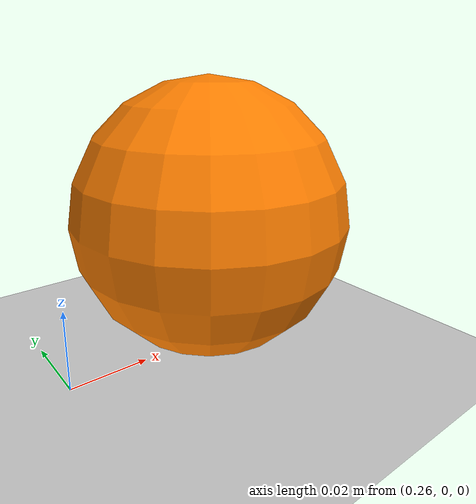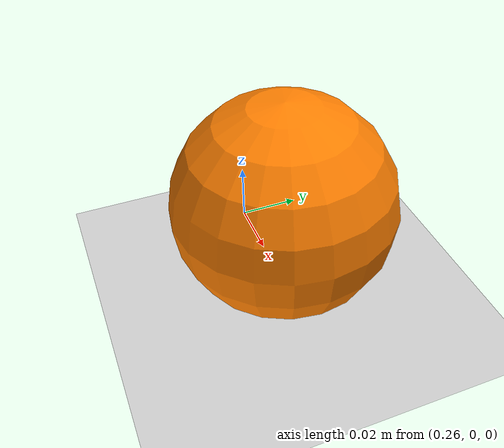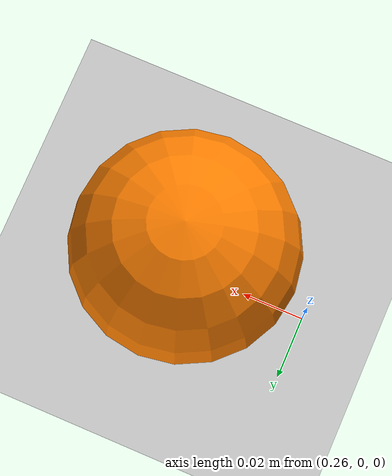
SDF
<?xml version="1.0" ?>
<sdf version="1.8">
  <world name="op3_world">

    <!-- Physics settings -->
    <physics name="default_physics" type="ode">
      <max_step_size>0.001</max_step_size>
      <real_time_factor>1.0</real_time_factor>
      <real_time_update_rate>1000</real_time_update_rate>
    </physics>

    <!-- Plugins -->
    <plugin filename="gz-sim-physics-system" name="gz::sim::systems::Physics"/>
    <plugin filename="gz-sim-user-commands-system" name="gz::sim::systems::UserCommands"/>
    <plugin filename="gz-sim-scene-broadcaster-system" name="gz::sim::systems::SceneBroadcaster"/>
    <plugin filename="gz-sim-sensors-system" name="gz::sim::systems::Sensors">
      <render_engine>ogre2</render_engine>
    </plugin>
    <plugin filename="gz-sim-imu-system" name="gz::sim::systems::Imu"/>
    <plugin filename="gz-sim-contact-system" name="gz::sim::systems::Contact"/>

    <!-- Gravity -->
    <gravity>0 0 -9.81</gravity>

    <!-- Lighting -->
    <light type="directional" name="sun">
      <cast_shadows>true</cast_shadows>
      <pose>0 0 10 0 0 0</pose>
      <diffuse>0.8 0.8 0.8 1</diffuse>
      <specular>0.2 0.2 0.2 1</specular>
      <attenuation>
        <range>1000</range>
        <constant>0.9</constant>
        <linear>0.01</linear>
        <quadratic>0.001</quadratic>
      </attenuation>
      <direction>-0.5 0.1 -0.9</direction>
    </light>

    <!-- Ground Plane -->
    <model name="ground_plane">
      <static>true</static>
      <link name="link">
        <collision name="collision">
          <geometry>
            <plane>
              <normal>0 0 1</normal>
              <size>100 100</size>
            </plane>
          </geometry>
          <surface>
            <friction>
              <ode>
                <mu>100</mu>
                <mu2>50</mu2>
              </ode>
            </friction>
          </surface>
        </collision>
        <visual name="visual">
          <geometry>
            <plane>
              <normal>0 0 1</normal>
              <size>100 100</size>
            </plane>
          </geometry>
          <material>
            <ambient>0.8 0.8 0.8 1</ambient>
            <diffuse>0.8 0.8 0.8 1</diffuse>
            <specular>0.8 0.8 0.8 1</specular>
          </material>
        </visual>
      </link>
    </model>

    <!-- Soccer Ball for RoboCup Humanoid Kid Size -->
    <!-- Ukuran bola: diameter ~6-7cm untuk kid size robot -->
    <model name="soccer_ball">
      <pose>0.3 0 0.035 0 0 0</pose>
      <link name="ball_link">
        <inertial>
          <mass>0.05</mass>
          <inertia>
            <ixx>0.00001</ixx>
            <ixy>0</ixy>
            <ixz>0</ixz>
            <iyy>0.00001</iyy>
            <iyz>0</iyz>
            <izz>0.00001</izz>
          </inertia>
        </inertial>
        <collision name="collision">
          <geometry>
            <sphere>
              <radius>0.035</radius>
            </sphere>
          </geometry>
          <surface>
            <friction>
              <ode>
                <mu>0.8</mu>
                <mu2>0.8</mu2>
              </ode>
            </friction>
            <bounce>
              <restitution_coefficient>0.6</restitution_coefficient>
            </bounce>
          </surface>
        </collision>
        <visual name="visual">
          <geometry>
            <sphere>
              <radius>0.035</radius>
            </sphere>
          </geometry>
          <material>
            <ambient>1 0.5 0 1</ambient>
            <diffuse>1 0.5 0 1</diffuse>
          </material>
        </visual>
      </link>
    </model>

    <!-- Scene settings -->
    <scene>
      <ambient>0.4 0.4 0.4 1</ambient>
      <background>0.7 0.7 0.7 1</background>
      <shadows>true</shadows>
    </scene>

  </world>
</sdf>
